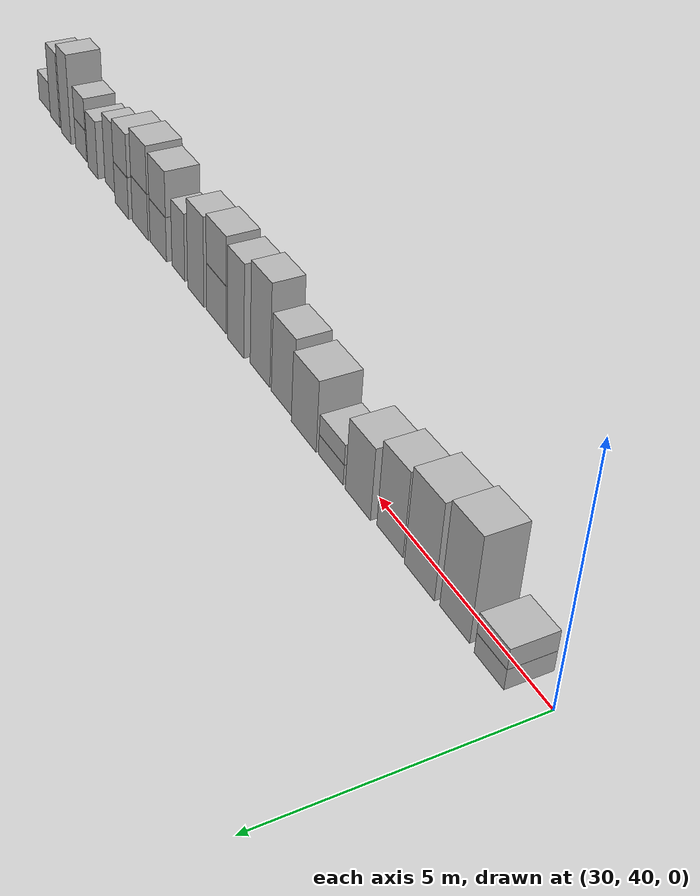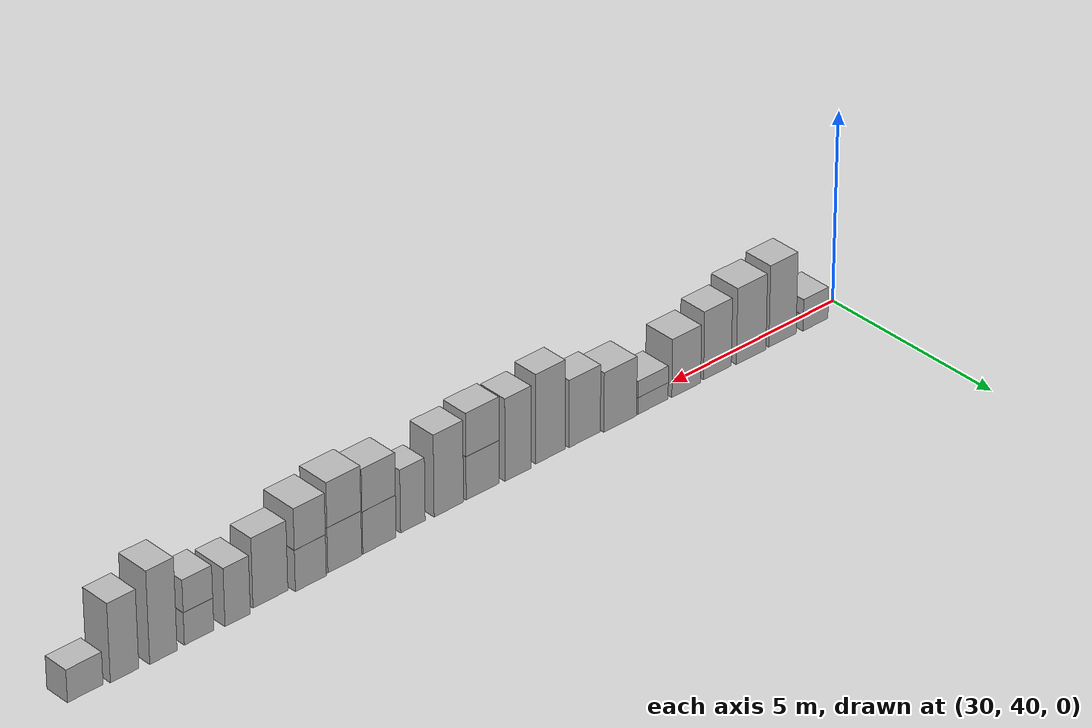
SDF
<sdf version="1.5">
 <world name="default">
  <model name="ground_plane">
   <static>true</static>
   <link name="link">
    <collision name="collision">
     <geometry><plane><normal>0 0 1</normal><size>250 250</size></plane></geometry>
     <surface><friction><ode><mu>1</mu><mu2>1</mu2></ode></friction></surface>
    </collision>
    <visual name="grass">
     <cast_shadows>false</cast_shadows>
     <geometry><mesh><uri>file://grass_plane/meshes/grass_plane.dae</uri></mesh></geometry>
    </visual>
   </link>
  </model>
  <model name="Cardboard_box_256">
   <link name="link_0">
    <pose>31 40 0 0 0 0</pose>
    <inertial>
     <mass>1</mass>
     <inertia>
      <ixx>0.166667</ixx>
      <ixy>0</ixy>
      <ixz>0</ixz>
      <iyy>0.166667</iyy>
      <iyz>0</iyz>
      <izz>0.166667</izz>
     </inertia>
    </inertial>
    <collision name="collision">
     <geometry>
      <mesh>
       <uri>model://Cardboard_box/meshes/cardboard_box.dae</uri>
       <scale>1.98306761468 2.21529423882 1.05436397298</scale>
      </mesh>
     </geometry>
    </collision>
    <visual name="visual">
     <geometry>
      <mesh>
       <uri>model://Cardboard_box/meshes/cardboard_box.dae</uri>
       <scale>1.98306761468 2.21529423882 1.05436397298</scale>
      </mesh>
     </geometry>
    </visual>
   </link>
   <static>1</static>
  </model>
  <model name="Cardboard_box_top_256">
   <link name="link_0">
    <pose>31 40 0.421745589191 0 0 0</pose>
    <inertial>
     <mass>1</mass>
     <inertia>
      <ixx>0.166667</ixx>
      <ixy>0</ixy>
      <ixz>0</ixz>
      <iyy>0.166667</iyy>
      <iyz>0</iyz>
      <izz>0.166667</izz>
     </inertia>
    </inertial>
    <collision name="collision">
     <geometry>
      <mesh>
       <uri>model://Cardboard_box/meshes/cardboard_box.dae</uri>
       <scale>1.98306761468 2.21529423882 1.05436397298</scale>
      </mesh>
     </geometry>
    </collision>
    <visual name="visual">
     <geometry>
      <mesh>
       <uri>model://Cardboard_box/meshes/cardboard_box.dae</uri>
       <scale>1.98306761468 2.21529423882 1.05436397298</scale>
      </mesh>
     </geometry>
    </visual>
   </link>
   <static>1</static>
  </model>
  <model name="Cardboard_box_257">
   <link name="link_0">
    <pose>32 40 0 0 0 0</pose>
    <inertial>
     <mass>1</mass>
     <inertia>
      <ixx>0.166667</ixx>
      <ixy>0</ixy>
      <ixz>0</ixz>
      <iyy>0.166667</iyy>
      <iyz>0</iyz>
      <izz>0.166667</izz>
     </inertia>
    </inertial>
    <collision name="collision">
     <geometry>
      <mesh>
       <uri>model://Cardboard_box/meshes/cardboard_box.dae</uri>
       <scale>2.14832254175 2.02679498226 5.44477394996</scale>
      </mesh>
     </geometry>
    </collision>
    <visual name="visual">
     <geometry>
      <mesh>
       <uri>model://Cardboard_box/meshes/cardboard_box.dae</uri>
       <scale>2.14832254175 2.02679498226 5.44477394996</scale>
      </mesh>
     </geometry>
    </visual>
   </link>
   <static>1</static>
  </model>
  <model name="Cardboard_box_258">
   <link name="link_0">
    <pose>33 40 0 0 0 0</pose>
    <inertial>
     <mass>1</mass>
     <inertia>
      <ixx>0.166667</ixx>
      <ixy>0</ixy>
      <ixz>0</ixz>
      <iyy>0.166667</iyy>
      <iyz>0</iyz>
      <izz>0.166667</izz>
     </inertia>
    </inertial>
    <collision name="collision">
     <geometry>
      <mesh>
       <uri>model://Cardboard_box/meshes/cardboard_box.dae</uri>
       <scale>2.30647754625 2.14877848694 5.07077566372</scale>
      </mesh>
     </geometry>
    </collision>
    <visual name="visual">
     <geometry>
      <mesh>
       <uri>model://Cardboard_box/meshes/cardboard_box.dae</uri>
       <scale>2.30647754625 2.14877848694 5.07077566372</scale>
      </mesh>
     </geometry>
    </visual>
   </link>
   <static>1</static>
  </model>
  <model name="Cardboard_box_259">
   <link name="link_0">
    <pose>34 40 0 0 0 0</pose>
    <inertial>
     <mass>1</mass>
     <inertia>
      <ixx>0.166667</ixx>
      <ixy>0</ixy>
      <ixz>0</ixz>
      <iyy>0.166667</iyy>
      <iyz>0</iyz>
      <izz>0.166667</izz>
     </inertia>
    </inertial>
    <collision name="collision">
     <geometry>
      <mesh>
       <uri>model://Cardboard_box/meshes/cardboard_box.dae</uri>
       <scale>2.15205478965 1.9250384947 4.51344834078</scale>
      </mesh>
     </geometry>
    </collision>
    <visual name="visual">
     <geometry>
      <mesh>
       <uri>model://Cardboard_box/meshes/cardboard_box.dae</uri>
       <scale>2.15205478965 1.9250384947 4.51344834078</scale>
      </mesh>
     </geometry>
    </visual>
   </link>
   <static>1</static>
  </model>
  <model name="Cardboard_box_260">
   <link name="link_0">
    <pose>35 40 0 0 0 0</pose>
    <inertial>
     <mass>1</mass>
     <inertia>
      <ixx>0.166667</ixx>
      <ixy>0</ixy>
      <ixz>0</ixz>
      <iyy>0.166667</iyy>
      <iyz>0</iyz>
      <izz>0.166667</izz>
     </inertia>
    </inertial>
    <collision name="collision">
     <geometry>
      <mesh>
       <uri>model://Cardboard_box/meshes/cardboard_box.dae</uri>
       <scale>2.21216727601 2.15348055449 3.8564896272</scale>
      </mesh>
     </geometry>
    </collision>
    <visual name="visual">
     <geometry>
      <mesh>
       <uri>model://Cardboard_box/meshes/cardboard_box.dae</uri>
       <scale>2.21216727601 2.15348055449 3.8564896272</scale>
      </mesh>
     </geometry>
    </visual>
   </link>
   <static>1</static>
  </model>
  <model name="Cardboard_box_261">
   <link name="link_0">
    <pose>36 40 0 0 0 0</pose>
    <inertial>
     <mass>1</mass>
     <inertia>
      <ixx>0.166667</ixx>
      <ixy>0</ixy>
      <ixz>0</ixz>
      <iyy>0.166667</iyy>
      <iyz>0</iyz>
      <izz>0.166667</izz>
     </inertia>
    </inertial>
    <collision name="collision">
     <geometry>
      <mesh>
       <uri>model://Cardboard_box/meshes/cardboard_box.dae</uri>
       <scale>2.31085718923 2.0840914828 1.10119686704</scale>
      </mesh>
     </geometry>
    </collision>
    <visual name="visual">
     <geometry>
      <mesh>
       <uri>model://Cardboard_box/meshes/cardboard_box.dae</uri>
       <scale>2.31085718923 2.0840914828 1.10119686704</scale>
      </mesh>
     </geometry>
    </visual>
   </link>
   <static>1</static>
  </model>
  <model name="Cardboard_box_top_261">
   <link name="link_0">
    <pose>36 40 0.440478746814 0 0 0</pose>
    <inertial>
     <mass>1</mass>
     <inertia>
      <ixx>0.166667</ixx>
      <ixy>0</ixy>
      <ixz>0</ixz>
      <iyy>0.166667</iyy>
      <iyz>0</iyz>
      <izz>0.166667</izz>
     </inertia>
    </inertial>
    <collision name="collision">
     <geometry>
      <mesh>
       <uri>model://Cardboard_box/meshes/cardboard_box.dae</uri>
       <scale>2.31085718923 2.0840914828 1.10119686704</scale>
      </mesh>
     </geometry>
    </collision>
    <visual name="visual">
     <geometry>
      <mesh>
       <uri>model://Cardboard_box/meshes/cardboard_box.dae</uri>
       <scale>2.31085718923 2.0840914828 1.10119686704</scale>
      </mesh>
     </geometry>
    </visual>
   </link>
   <static>1</static>
  </model>
  <model name="Cardboard_box_262">
   <link name="link_0">
    <pose>37 40 0 0 0 0</pose>
    <inertial>
     <mass>1</mass>
     <inertia>
      <ixx>0.166667</ixx>
      <ixy>0</ixy>
      <ixz>0</ixz>
      <iyy>0.166667</iyy>
      <iyz>0</iyz>
      <izz>0.166667</izz>
     </inertia>
    </inertial>
    <collision name="collision">
     <geometry>
      <mesh>
       <uri>model://Cardboard_box/meshes/cardboard_box.dae</uri>
       <scale>2.47312598357 2.17202588076 3.93383237522</scale>
      </mesh>
     </geometry>
    </collision>
    <visual name="visual">
     <geometry>
      <mesh>
       <uri>model://Cardboard_box/meshes/cardboard_box.dae</uri>
       <scale>2.47312598357 2.17202588076 3.93383237522</scale>
      </mesh>
     </geometry>
    </visual>
   </link>
   <static>1</static>
  </model>
  <model name="Cardboard_box_263">
   <link name="link_0">
    <pose>38 40 0 0 0 0</pose>
    <inertial>
     <mass>1</mass>
     <inertia>
      <ixx>0.166667</ixx>
      <ixy>0</ixy>
      <ixz>0</ixz>
      <iyy>0.166667</iyy>
      <iyz>0</iyz>
      <izz>0.166667</izz>
     </inertia>
    </inertial>
    <collision name="collision">
     <geometry>
      <mesh>
       <uri>model://Cardboard_box/meshes/cardboard_box.dae</uri>
       <scale>2.35284005713 1.81492887874 4.44085048728</scale>
      </mesh>
     </geometry>
    </collision>
    <visual name="visual">
     <geometry>
      <mesh>
       <uri>model://Cardboard_box/meshes/cardboard_box.dae</uri>
       <scale>2.35284005713 1.81492887874 4.44085048728</scale>
      </mesh>
     </geometry>
    </visual>
   </link>
   <static>1</static>
  </model>
  <model name="Cardboard_box_264">
   <link name="link_0">
    <pose>39 40 0 0 0 0</pose>
    <inertial>
     <mass>1</mass>
     <inertia>
      <ixx>0.166667</ixx>
      <ixy>0</ixy>
      <ixz>0</ixz>
      <iyy>0.166667</iyy>
      <iyz>0</iyz>
      <izz>0.166667</izz>
     </inertia>
    </inertial>
    <collision name="collision">
     <geometry>
      <mesh>
       <uri>model://Cardboard_box/meshes/cardboard_box.dae</uri>
       <scale>2.19113206548 1.72293075643 5.8796296541</scale>
      </mesh>
     </geometry>
    </collision>
    <visual name="visual">
     <geometry>
      <mesh>
       <uri>model://Cardboard_box/meshes/cardboard_box.dae</uri>
       <scale>2.19113206548 1.72293075643 5.8796296541</scale>
      </mesh>
     </geometry>
    </visual>
   </link>
   <static>1</static>
  </model>
  <model name="Cardboard_box_265">
   <link name="link_0">
    <pose>40 40 0 0 0 0</pose>
    <inertial>
     <mass>1</mass>
     <inertia>
      <ixx>0.166667</ixx>
      <ixy>0</ixy>
      <ixz>0</ixz>
      <iyy>0.166667</iyy>
      <iyz>0</iyz>
      <izz>0.166667</izz>
     </inertia>
    </inertial>
    <collision name="collision">
     <geometry>
      <mesh>
       <uri>model://Cardboard_box/meshes/cardboard_box.dae</uri>
       <scale>1.92335804129 1.98313305359 5.41885396767</scale>
      </mesh>
     </geometry>
    </collision>
    <visual name="visual">
     <geometry>
      <mesh>
       <uri>model://Cardboard_box/meshes/cardboard_box.dae</uri>
       <scale>1.92335804129 1.98313305359 5.41885396767</scale>
      </mesh>
     </geometry>
    </visual>
   </link>
   <static>1</static>
  </model>
  <model name="Cardboard_box_266">
   <link name="link_0">
    <pose>41 40 0 0 0 0</pose>
    <inertial>
     <mass>1</mass>
     <inertia>
      <ixx>0.166667</ixx>
      <ixy>0</ixy>
      <ixz>0</ixz>
      <iyy>0.166667</iyy>
      <iyz>0</iyz>
      <izz>0.166667</izz>
     </inertia>
    </inertial>
    <collision name="collision">
     <geometry>
      <mesh>
       <uri>model://Cardboard_box/meshes/cardboard_box.dae</uri>
       <scale>2.4292939641 1.81400065477 2.82438339685</scale>
      </mesh>
     </geometry>
    </collision>
    <visual name="visual">
     <geometry>
      <mesh>
       <uri>model://Cardboard_box/meshes/cardboard_box.dae</uri>
       <scale>2.4292939641 1.81400065477 2.82438339685</scale>
      </mesh>
     </geometry>
    </visual>
   </link>
   <static>1</static>
  </model>
  <model name="Cardboard_box_top_266">
   <link name="link_0">
    <pose>41 40 1.12975335874 0 0 0</pose>
    <inertial>
     <mass>1</mass>
     <inertia>
      <ixx>0.166667</ixx>
      <ixy>0</ixy>
      <ixz>0</ixz>
      <iyy>0.166667</iyy>
      <iyz>0</iyz>
      <izz>0.166667</izz>
     </inertia>
    </inertial>
    <collision name="collision">
     <geometry>
      <mesh>
       <uri>model://Cardboard_box/meshes/cardboard_box.dae</uri>
       <scale>2.4292939641 1.81400065477 2.82438339685</scale>
      </mesh>
     </geometry>
    </collision>
    <visual name="visual">
     <geometry>
      <mesh>
       <uri>model://Cardboard_box/meshes/cardboard_box.dae</uri>
       <scale>2.4292939641 1.81400065477 2.82438339685</scale>
      </mesh>
     </geometry>
    </visual>
   </link>
   <static>1</static>
  </model>
  <model name="Cardboard_box_267">
   <link name="link_0">
    <pose>42 40 0 0 0 0</pose>
    <inertial>
     <mass>1</mass>
     <inertia>
      <ixx>0.166667</ixx>
      <ixy>0</ixy>
      <ixz>0</ixz>
      <iyy>0.166667</iyy>
      <iyz>0</iyz>
      <izz>0.166667</izz>
     </inertia>
    </inertial>
    <collision name="collision">
     <geometry>
      <mesh>
       <uri>model://Cardboard_box/meshes/cardboard_box.dae</uri>
       <scale>2.13063172561 1.90691728852 5.35407036876</scale>
      </mesh>
     </geometry>
    </collision>
    <visual name="visual">
     <geometry>
      <mesh>
       <uri>model://Cardboard_box/meshes/cardboard_box.dae</uri>
       <scale>2.13063172561 1.90691728852 5.35407036876</scale>
      </mesh>
     </geometry>
    </visual>
   </link>
   <static>1</static>
  </model>
  <model name="Cardboard_box_268">
   <link name="link_0">
    <pose>43 40 0 0 0 0</pose>
    <inertial>
     <mass>1</mass>
     <inertia>
      <ixx>0.166667</ixx>
      <ixy>0</ixy>
      <ixz>0</ixz>
      <iyy>0.166667</iyy>
      <iyz>0</iyz>
      <izz>0.166667</izz>
     </inertia>
    </inertial>
    <collision name="collision">
     <geometry>
      <mesh>
       <uri>model://Cardboard_box/meshes/cardboard_box.dae</uri>
       <scale>1.7664210547 1.73963097319 4.09899597423</scale>
      </mesh>
     </geometry>
    </collision>
    <visual name="visual">
     <geometry>
      <mesh>
       <uri>model://Cardboard_box/meshes/cardboard_box.dae</uri>
       <scale>1.7664210547 1.73963097319 4.09899597423</scale>
      </mesh>
     </geometry>
    </visual>
   </link>
   <static>1</static>
  </model>
  <model name="Cardboard_box_269">
   <link name="link_0">
    <pose>44 40 0 0 0 0</pose>
    <inertial>
     <mass>1</mass>
     <inertia>
      <ixx>0.166667</ixx>
      <ixy>0</ixy>
      <ixz>0</ixz>
      <iyy>0.166667</iyy>
      <iyz>0</iyz>
      <izz>0.166667</izz>
     </inertia>
    </inertial>
    <collision name="collision">
     <geometry>
      <mesh>
       <uri>model://Cardboard_box/meshes/cardboard_box.dae</uri>
       <scale>2.37354289206 2.01794457287 2.74477263848</scale>
      </mesh>
     </geometry>
    </collision>
    <visual name="visual">
     <geometry>
      <mesh>
       <uri>model://Cardboard_box/meshes/cardboard_box.dae</uri>
       <scale>2.37354289206 2.01794457287 2.74477263848</scale>
      </mesh>
     </geometry>
    </visual>
   </link>
   <static>1</static>
  </model>
  <model name="Cardboard_box_top_269">
   <link name="link_0">
    <pose>44 40 1.09790905539 0 0 0</pose>
    <inertial>
     <mass>1</mass>
     <inertia>
      <ixx>0.166667</ixx>
      <ixy>0</ixy>
      <ixz>0</ixz>
      <iyy>0.166667</iyy>
      <iyz>0</iyz>
      <izz>0.166667</izz>
     </inertia>
    </inertial>
    <collision name="collision">
     <geometry>
      <mesh>
       <uri>model://Cardboard_box/meshes/cardboard_box.dae</uri>
       <scale>2.37354289206 2.01794457287 2.74477263848</scale>
      </mesh>
     </geometry>
    </collision>
    <visual name="visual">
     <geometry>
      <mesh>
       <uri>model://Cardboard_box/meshes/cardboard_box.dae</uri>
       <scale>2.37354289206 2.01794457287 2.74477263848</scale>
      </mesh>
     </geometry>
    </visual>
   </link>
   <static>1</static>
  </model>
  <model name="Cardboard_box_270">
   <link name="link_0">
    <pose>45 40 0 0 0 0</pose>
    <inertial>
     <mass>1</mass>
     <inertia>
      <ixx>0.166667</ixx>
      <ixy>0</ixy>
      <ixz>0</ixz>
      <iyy>0.166667</iyy>
      <iyz>0</iyz>
      <izz>0.166667</izz>
     </inertia>
    </inertial>
    <collision name="collision">
     <geometry>
      <mesh>
       <uri>model://Cardboard_box/meshes/cardboard_box.dae</uri>
       <scale>2.39773110606 2.15298733973 2.91387983717</scale>
      </mesh>
     </geometry>
    </collision>
    <visual name="visual">
     <geometry>
      <mesh>
       <uri>model://Cardboard_box/meshes/cardboard_box.dae</uri>
       <scale>2.39773110606 2.15298733973 2.91387983717</scale>
      </mesh>
     </geometry>
    </visual>
   </link>
   <static>1</static>
  </model>
  <model name="Cardboard_box_top_270">
   <link name="link_0">
    <pose>45 40 1.16555193487 0 0 0</pose>
    <inertial>
     <mass>1</mass>
     <inertia>
      <ixx>0.166667</ixx>
      <ixy>0</ixy>
      <ixz>0</ixz>
      <iyy>0.166667</iyy>
      <iyz>0</iyz>
      <izz>0.166667</izz>
     </inertia>
    </inertial>
    <collision name="collision">
     <geometry>
      <mesh>
       <uri>model://Cardboard_box/meshes/cardboard_box.dae</uri>
       <scale>2.39773110606 2.15298733973 2.91387983717</scale>
      </mesh>
     </geometry>
    </collision>
    <visual name="visual">
     <geometry>
      <mesh>
       <uri>model://Cardboard_box/meshes/cardboard_box.dae</uri>
       <scale>2.39773110606 2.15298733973 2.91387983717</scale>
      </mesh>
     </geometry>
    </visual>
   </link>
   <static>1</static>
  </model>
  <model name="Cardboard_box_271">
   <link name="link_0">
    <pose>46 40 0 0 0 0</pose>
    <inertial>
     <mass>1</mass>
     <inertia>
      <ixx>0.166667</ixx>
      <ixy>0</ixy>
      <ixz>0</ixz>
      <iyy>0.166667</iyy>
      <iyz>0</iyz>
      <izz>0.166667</izz>
     </inertia>
    </inertial>
    <collision name="collision">
     <geometry>
      <mesh>
       <uri>model://Cardboard_box/meshes/cardboard_box.dae</uri>
       <scale>2.17172022758 2.44370287684 2.67187992313</scale>
      </mesh>
     </geometry>
    </collision>
    <visual name="visual">
     <geometry>
      <mesh>
       <uri>model://Cardboard_box/meshes/cardboard_box.dae</uri>
       <scale>2.17172022758 2.44370287684 2.67187992313</scale>
      </mesh>
     </geometry>
    </visual>
   </link>
   <static>1</static>
  </model>
  <model name="Cardboard_box_top_271">
   <link name="link_0">
    <pose>46 40 1.06875196925 0 0 0</pose>
    <inertial>
     <mass>1</mass>
     <inertia>
      <ixx>0.166667</ixx>
      <ixy>0</ixy>
      <ixz>0</ixz>
      <iyy>0.166667</iyy>
      <iyz>0</iyz>
      <izz>0.166667</izz>
     </inertia>
    </inertial>
    <collision name="collision">
     <geometry>
      <mesh>
       <uri>model://Cardboard_box/meshes/cardboard_box.dae</uri>
       <scale>2.17172022758 2.44370287684 2.67187992313</scale>
      </mesh>
     </geometry>
    </collision>
    <visual name="visual">
     <geometry>
      <mesh>
       <uri>model://Cardboard_box/meshes/cardboard_box.dae</uri>
       <scale>2.17172022758 2.44370287684 2.67187992313</scale>
      </mesh>
     </geometry>
    </visual>
   </link>
   <static>1</static>
  </model>
  <model name="Cardboard_box_272">
   <link name="link_0">
    <pose>47 40 0 0 0 0</pose>
    <inertial>
     <mass>1</mass>
     <inertia>
      <ixx>0.166667</ixx>
      <ixy>0</ixy>
      <ixz>0</ixz>
      <iyy>0.166667</iyy>
      <iyz>0</iyz>
      <izz>0.166667</izz>
     </inertia>
    </inertial>
    <collision name="collision">
     <geometry>
      <mesh>
       <uri>model://Cardboard_box/meshes/cardboard_box.dae</uri>
       <scale>2.42339839832 1.72658674404 4.51802240126</scale>
      </mesh>
     </geometry>
    </collision>
    <visual name="visual">
     <geometry>
      <mesh>
       <uri>model://Cardboard_box/meshes/cardboard_box.dae</uri>
       <scale>2.42339839832 1.72658674404 4.51802240126</scale>
      </mesh>
     </geometry>
    </visual>
   </link>
   <static>1</static>
  </model>
  <model name="Cardboard_box_273">
   <link name="link_0">
    <pose>48 40 0 0 0 0</pose>
    <inertial>
     <mass>1</mass>
     <inertia>
      <ixx>0.166667</ixx>
      <ixy>0</ixy>
      <ixz>0</ixz>
      <iyy>0.166667</iyy>
      <iyz>0</iyz>
      <izz>0.166667</izz>
     </inertia>
    </inertial>
    <collision name="collision">
     <geometry>
      <mesh>
       <uri>model://Cardboard_box/meshes/cardboard_box.dae</uri>
       <scale>1.74725441964 2.32442475661 3.76414993621</scale>
      </mesh>
     </geometry>
    </collision>
    <visual name="visual">
     <geometry>
      <mesh>
       <uri>model://Cardboard_box/meshes/cardboard_box.dae</uri>
       <scale>1.74725441964 2.32442475661 3.76414993621</scale>
      </mesh>
     </geometry>
    </visual>
   </link>
   <static>1</static>
  </model>
  <model name="Cardboard_box_274">
   <link name="link_0">
    <pose>49 40 0 0 0 0</pose>
    <inertial>
     <mass>1</mass>
     <inertia>
      <ixx>0.166667</ixx>
      <ixy>0</ixy>
      <ixz>0</ixz>
      <iyy>0.166667</iyy>
      <iyz>0</iyz>
      <izz>0.166667</izz>
     </inertia>
    </inertial>
    <collision name="collision">
     <geometry>
      <mesh>
       <uri>model://Cardboard_box/meshes/cardboard_box.dae</uri>
       <scale>2.01594356482 2.02247881815 2.08709702679</scale>
      </mesh>
     </geometry>
    </collision>
    <visual name="visual">
     <geometry>
      <mesh>
       <uri>model://Cardboard_box/meshes/cardboard_box.dae</uri>
       <scale>2.01594356482 2.02247881815 2.08709702679</scale>
      </mesh>
     </geometry>
    </visual>
   </link>
   <static>1</static>
  </model>
  <model name="Cardboard_box_top_274">
   <link name="link_0">
    <pose>49 40 0.834838810715 0 0 0</pose>
    <inertial>
     <mass>1</mass>
     <inertia>
      <ixx>0.166667</ixx>
      <ixy>0</ixy>
      <ixz>0</ixz>
      <iyy>0.166667</iyy>
      <iyz>0</iyz>
      <izz>0.166667</izz>
     </inertia>
    </inertial>
    <collision name="collision">
     <geometry>
      <mesh>
       <uri>model://Cardboard_box/meshes/cardboard_box.dae</uri>
       <scale>2.01594356482 2.02247881815 2.08709702679</scale>
      </mesh>
     </geometry>
    </collision>
    <visual name="visual">
     <geometry>
      <mesh>
       <uri>model://Cardboard_box/meshes/cardboard_box.dae</uri>
       <scale>2.01594356482 2.02247881815 2.08709702679</scale>
      </mesh>
     </geometry>
    </visual>
   </link>
   <static>1</static>
  </model>
  <model name="Cardboard_box_275">
   <link name="link_0">
    <pose>50 40 0 0 0 0</pose>
    <inertial>
     <mass>1</mass>
     <inertia>
      <ixx>0.166667</ixx>
      <ixy>0</ixy>
      <ixz>0</ixz>
      <iyy>0.166667</iyy>
      <iyz>0</iyz>
      <izz>0.166667</izz>
     </inertia>
    </inertial>
    <collision name="collision">
     <geometry>
      <mesh>
       <uri>model://Cardboard_box/meshes/cardboard_box.dae</uri>
       <scale>1.85719668291 2.23923365483 5.97720126845</scale>
      </mesh>
     </geometry>
    </collision>
    <visual name="visual">
     <geometry>
      <mesh>
       <uri>model://Cardboard_box/meshes/cardboard_box.dae</uri>
       <scale>1.85719668291 2.23923365483 5.97720126845</scale>
      </mesh>
     </geometry>
    </visual>
   </link>
   <static>1</static>
  </model>
  <model name="Cardboard_box_276">
   <link name="link_0">
    <pose>51 40 0 0 0 0</pose>
    <inertial>
     <mass>1</mass>
     <inertia>
      <ixx>0.166667</ixx>
      <ixy>0</ixy>
      <ixz>0</ixz>
      <iyy>0.166667</iyy>
      <iyz>0</iyz>
      <izz>0.166667</izz>
     </inertia>
    </inertial>
    <collision name="collision">
     <geometry>
      <mesh>
       <uri>model://Cardboard_box/meshes/cardboard_box.dae</uri>
       <scale>1.91128173234 1.99760814005 5.07326833965</scale>
      </mesh>
     </geometry>
    </collision>
    <visual name="visual">
     <geometry>
      <mesh>
       <uri>model://Cardboard_box/meshes/cardboard_box.dae</uri>
       <scale>1.91128173234 1.99760814005 5.07326833965</scale>
      </mesh>
     </geometry>
    </visual>
   </link>
   <static>1</static>
  </model>
  <model name="Cardboard_box_277">
   <link name="link_0">
    <pose>52 40 0 0 0 0</pose>
    <inertial>
     <mass>1</mass>
     <inertia>
      <ixx>0.166667</ixx>
      <ixy>0</ixy>
      <ixz>0</ixz>
      <iyy>0.166667</iyy>
      <iyz>0</iyz>
      <izz>0.166667</izz>
     </inertia>
    </inertial>
    <collision name="collision">
     <geometry>
      <mesh>
       <uri>model://Cardboard_box/meshes/cardboard_box.dae</uri>
       <scale>2.37126441306 1.71776561634 2.09320451443</scale>
      </mesh>
     </geometry>
    </collision>
    <visual name="visual">
     <geometry>
      <mesh>
       <uri>model://Cardboard_box/meshes/cardboard_box.dae</uri>
       <scale>2.37126441306 1.71776561634 2.09320451443</scale>
      </mesh>
     </geometry>
    </visual>
   </link>
   <static>1</static>
  </model>
 </world>
</sdf>
